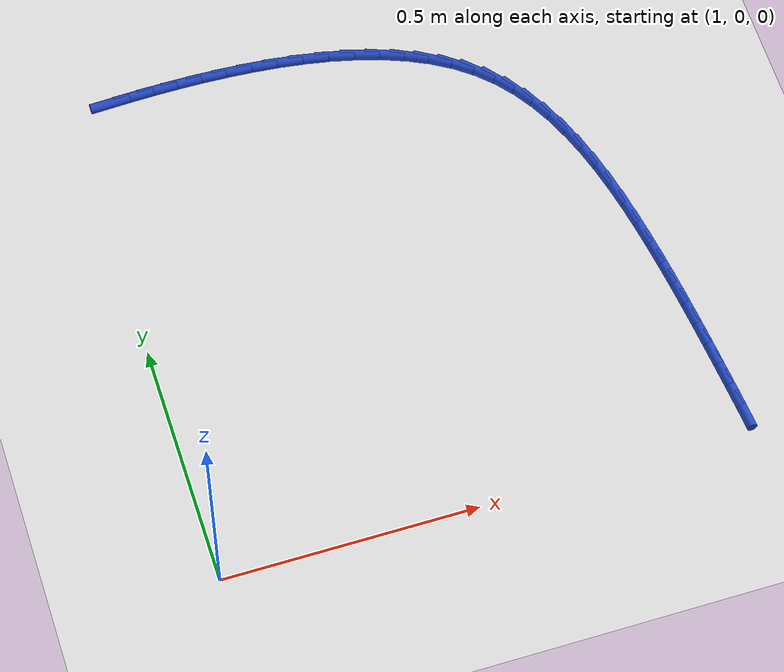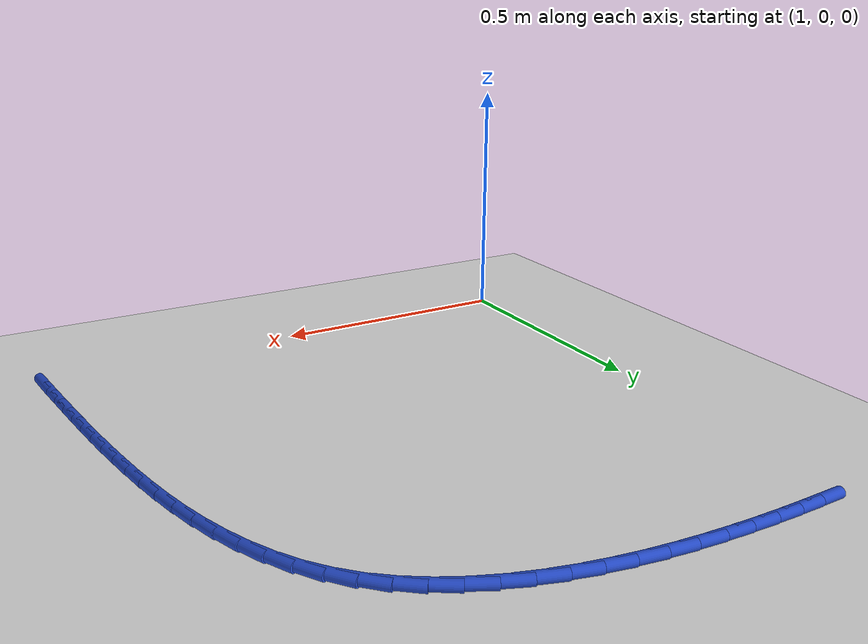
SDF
<sdf version="1.6">
 <world name="default">
  <model name="ground_plane">
   <static>1</static>
   <link name="link">
    <collision name="collision">
     <geometry><plane><normal>0 0 1</normal><size>100 100</size></plane></geometry>
     <surface><friction><ode><mu>100</mu><mu2>50</mu2></ode></friction></surface>
    </collision>
    <visual name="visual">
     <cast_shadows>0</cast_shadows>
     <geometry><plane><normal>0 0 1</normal><size>100 100</size></plane></geometry>
     <material>
      <script><uri>file://media/materials/scripts/gazebo.material</uri><name>Gazebo/WhiteGlow</name></script>
     </material>
    </visual>
   </link>
  </model>
  <model name="line">
   <link name="link_35">
    <pose>1.077330459599841 1.0617475296056025 0.01 0 1.57 0.0446017251811088</pose>
    <collision name="collision">
     <geometry><cylinder><radius>0.01</radius><length>0.08</length></cylinder></geometry>
    </collision>
    <visual name="visual">
     <material>
      <script><name>Gazebo/Blue</name><uri>file://media/materials/scripts/gazebo.material</uri></script>
     </material>
     <geometry><cylinder><radius>0.01</radius><length>0.08</length></cylinder></geometry>
    </visual>
   </link>
   <link name="link_36">
    <pose>1.1256399923575338 1.0639036480310473 0.01 0 1.57 0.026323497929840085</pose>
    <collision name="collision">
     <geometry><cylinder><radius>0.01</radius><length>0.08</length></cylinder></geometry>
    </collision>
    <visual name="visual">
     <material>
      <script><name>Gazebo/Blue</name><uri>file://media/materials/scripts/gazebo.material</uri></script>
     </material>
     <geometry><cylinder><radius>0.01</radius><length>0.08</length></cylinder></geometry>
    </visual>
   </link>
   <link name="link_37">
    <pose>1.1745354990775845 1.0651910461721563 0.01 0 1.57 0.006543846868040155</pose>
    <collision name="collision">
     <geometry><cylinder><radius>0.01</radius><length>0.08</length></cylinder></geometry>
    </collision>
    <visual name="visual">
     <material>
      <script><name>Gazebo/Blue</name><uri>file://media/materials/scripts/gazebo.material</uri></script>
     </material>
     <geometry><cylinder><radius>0.01</radius><length>0.08</length></cylinder></geometry>
    </visual>
   </link>
   <link name="link_38">
    <pose>1.2242155370669672 1.0655161493736862 0.01 0 1.57 -0.014594561211399498</pose>
    <collision name="collision">
     <geometry><cylinder><radius>0.01</radius><length>0.08</length></cylinder></geometry>
    </collision>
    <visual name="visual">
     <material>
      <script><name>Gazebo/Blue</name><uri>file://media/materials/scripts/gazebo.material</uri></script>
     </material>
     <geometry><cylinder><radius>0.01</radius><length>0.08</length></cylinder></geometry>
    </visual>
   </link>
   <link name="link_39">
    <pose>1.2748469841931045 1.0647771531496053 0.01 0 1.57 -0.03883700470863113</pose>
    <collision name="collision">
     <geometry><cylinder><radius>0.01</radius><length>0.08</length></cylinder></geometry>
    </collision>
    <visual name="visual">
     <material>
      <script><name>Gazebo/Blue</name><uri>file://media/materials/scripts/gazebo.material</uri></script>
     </material>
     <geometry><cylinder><radius>0.01</radius><length>0.08</length></cylinder></geometry>
    </visual>
   </link>
   <link name="link_40">
    <pose>1.3262420598524998 1.0627801182020307 0.01 0 1.57 -0.06766321029863363</pose>
    <collision name="collision">
     <geometry><cylinder><radius>0.01</radius><length>0.08</length></cylinder></geometry>
    </collision>
    <visual name="visual">
     <material>
      <script><name>Gazebo/Blue</name><uri>file://media/materials/scripts/gazebo.material</uri></script>
     </material>
     <geometry><cylinder><radius>0.01</radius><length>0.08</length></cylinder></geometry>
    </visual>
   </link>
   <link name="link_41">
    <pose>1.3779904748190344 1.0592733009177675 0.01 0 1.57 -0.10159209715488299</pose>
    <collision name="collision">
     <geometry><cylinder><radius>0.01</radius><length>0.08</length></cylinder></geometry>
    </collision>
    <visual name="visual">
     <material>
      <script><name>Gazebo/Blue</name><uri>file://media/materials/scripts/gazebo.material</uri></script>
     </material>
     <geometry><cylinder><radius>0.01</radius><length>0.08</length></cylinder></geometry>
    </visual>
   </link>
   <link name="link_42">
    <pose>1.4296785045673628 1.0540040652457585 0.01 0 1.57 -0.14128497044938518</pose>
    <collision name="collision">
     <geometry><cylinder><radius>0.01</radius><length>0.08</length></cylinder></geometry>
    </collision>
    <visual name="visual">
     <material>
      <script><name>Gazebo/Blue</name><uri>file://media/materials/scripts/gazebo.material</uri></script>
     </material>
     <geometry><cylinder><radius>0.01</radius><length>0.08</length></cylinder></geometry>
    </visual>
   </link>
   <link name="link_43">
    <pose>1.4808924245721409 1.0467197751349457 0.01 0 1.57 -0.1875706249761669</pose>
    <collision name="collision">
     <geometry><cylinder><radius>0.01</radius><length>0.08</length></cylinder></geometry>
    </collision>
    <visual name="visual">
     <material>
      <script><name>Gazebo/Blue</name><uri>file://media/materials/scripts/gazebo.material</uri></script>
     </material>
     <geometry><cylinder><radius>0.01</radius><length>0.08</length></cylinder></geometry>
    </visual>
   </link>
   <link name="link_44">
    <pose>1.5312185103080245 1.0371677945342719 0.01 0 1.57 -0.24144648340928193</pose>
    <collision name="collision">
     <geometry><cylinder><radius>0.01</radius><length>0.08</length></cylinder></geometry>
    </collision>
    <visual name="visual">
     <material>
      <script><name>Gazebo/Blue</name><uri>file://media/materials/scripts/gazebo.material</uri></script>
     </material>
     <geometry><cylinder><radius>0.01</radius><length>0.08</length></cylinder></geometry>
    </visual>
   </link>
   <link name="link_45">
    <pose>1.580243037249668 1.0250954873926796 0.01 0 1.57 -0.30406163387184343</pose>
    <collision name="collision">
     <geometry><cylinder><radius>0.01</radius><length>0.08</length></cylinder></geometry>
    </collision>
    <visual name="visual">
     <material>
      <script><name>Gazebo/Blue</name><uri>file://media/materials/scripts/gazebo.material</uri></script>
     </material>
     <geometry><cylinder><radius>0.01</radius><length>0.08</length></cylinder></geometry>
    </visual>
   </link>
   <link name="link_46">
    <pose>1.627552280871728 1.0102502176591113 0.01 0 1.57 -0.37666096547751804</pose>
    <collision name="collision">
     <geometry><cylinder><radius>0.01</radius><length>0.08</length></cylinder></geometry>
    </collision>
    <visual name="visual">
     <material>
      <script><name>Gazebo/Blue</name><uri>file://media/materials/scripts/gazebo.material</uri></script>
     </material>
     <geometry><cylinder><radius>0.01</radius><length>0.08</length></cylinder></geometry>
    </visual>
   </link>
   <link name="link_47">
    <pose>1.6727325166488594 0.9923793492825097 0.01 0 1.57 -0.4604594581554081</pose>
    <collision name="collision">
     <geometry><cylinder><radius>0.01</radius><length>0.08</length></cylinder></geometry>
    </collision>
    <visual name="visual">
     <material>
      <script><name>Gazebo/Blue</name><uri>file://media/materials/scripts/gazebo.material</uri></script>
     </material>
     <geometry><cylinder><radius>0.01</radius><length>0.08</length></cylinder></geometry>
    </visual>
   </link>
   <link name="link_48">
    <pose>1.7153700200557183 0.9712302462118169 0.01 0 1.57 -0.5564093542732482</pose>
    <collision name="collision">
     <geometry><cylinder><radius>0.01</radius><length>0.08</length></cylinder></geometry>
    </collision>
    <visual name="visual">
     <material>
      <script><name>Gazebo/Blue</name><uri>file://media/materials/scripts/gazebo.material</uri></script>
     </material>
     <geometry><cylinder><radius>0.01</radius><length>0.08</length></cylinder></geometry>
    </visual>
   </link>
   <link name="link_49">
    <pose>1.7550510665669588 0.9465502723959759 0.01 0 1.57 -0.6648361354555788</pose>
    <collision name="collision">
     <geometry><cylinder><radius>0.01</radius><length>0.08</length></cylinder></geometry>
    </collision>
    <visual name="visual">
     <material>
      <script><name>Gazebo/Blue</name><uri>file://media/materials/scripts/gazebo.material</uri></script>
     </material>
     <geometry><cylinder><radius>0.01</radius><length>0.08</length></cylinder></geometry>
    </visual>
   </link>
   <link name="link_50">
    <pose>1.7913619316572378 0.9180867917839286 0.01 0 1.57 -0.7845811259198384</pose>
    <collision name="collision">
     <geometry><cylinder><radius>0.01</radius><length>0.08</length></cylinder></geometry>
    </collision>
    <visual name="visual">
     <material>
      <script><name>Gazebo/Blue</name><uri>file://media/materials/scripts/gazebo.material</uri></script>
     </material>
     <geometry><cylinder><radius>0.01</radius><length>0.08</length></cylinder></geometry>
    </visual>
   </link>
   <link name="link_51">
    <pose>1.823901554734521 0.8856002974933804 0.01 0 1.57 -0.9031709341815312</pose>
    <collision name="collision">
     <geometry><cylinder><radius>0.01</radius><length>0.08</length></cylinder></geometry>
    </collision>
    <visual name="visual">
     <material>
      <script><name>Gazebo/Blue</name><uri>file://media/materials/scripts/gazebo.material</uri></script>
     </material>
     <geometry><cylinder><radius>0.01</radius><length>0.08</length></cylinder></geometry>
    </visual>
   </link>
   <link name="link_52">
    <pose>1.8526020337529767 0.8491966804477683 0.01 0 1.57 -1.0077063952306282</pose>
    <collision name="collision">
     <geometry><cylinder><radius>0.01</radius><length>0.08</length></cylinder></geometry>
    </collision>
    <visual name="visual">
     <material>
      <script><name>Gazebo/Blue</name><uri>file://media/materials/scripts/gazebo.material</uri></script>
     </material>
     <geometry><cylinder><radius>0.01</radius><length>0.08</length></cylinder></geometry>
    </visual>
   </link>
   <link name="link_53">
    <pose>1.8777537049039736 0.8093532304209262 0.01 0 1.57 -1.097528058521291</pose>
    <collision name="collision">
     <geometry><cylinder><radius>0.01</radius><length>0.08</length></cylinder></geometry>
    </collision>
    <visual name="visual">
     <material>
      <script><name>Gazebo/Blue</name><uri>file://media/materials/scripts/gazebo.material</uri></script>
     </material>
     <geometry><cylinder><radius>0.01</radius><length>0.08</length></cylinder></geometry>
    </visual>
   </link>
   <link name="link_54">
    <pose>1.8996645925349527 0.766565575153295 0.01 0 1.57 -1.1735646982423504</pose>
    <collision name="collision">
     <geometry><cylinder><radius>0.01</radius><length>0.08</length></cylinder></geometry>
    </collision>
    <visual name="visual">
     <material>
      <script><name>Gazebo/Blue</name><uri>file://media/materials/scripts/gazebo.material</uri></script>
     </material>
     <geometry><cylinder><radius>0.01</radius><length>0.08</length></cylinder></geometry>
    </visual>
   </link>
   <link name="link_55">
    <pose>1.9186427209933583 0.7213293423853167 0.01 0 1.57 -1.2371986365955125</pose>
    <collision name="collision">
     <geometry><cylinder><radius>0.01</radius><length>0.08</length></cylinder></geometry>
    </collision>
    <visual name="visual">
     <material>
      <script><name>Gazebo/Blue</name><uri>file://media/materials/scripts/gazebo.material</uri></script>
     </material>
     <geometry><cylinder><radius>0.01</radius><length>0.08</length></cylinder></geometry>
    </visual>
   </link>
   <link name="link_56">
    <pose>1.9349961146266323 0.6741401598574334 0.01 0 1.57 -1.2898819806516661</pose>
    <collision name="collision">
     <geometry><cylinder><radius>0.01</radius><length>0.08</length></cylinder></geometry>
    </collision>
    <visual name="visual">
     <material>
      <script><name>Gazebo/Blue</name><uri>file://media/materials/scripts/gazebo.material</uri></script>
     </material>
     <geometry><cylinder><radius>0.01</radius><length>0.08</length></cylinder></geometry>
    </visual>
   </link>
   <link name="link_57">
    <pose>1.949032797782218 0.6254936553100867 0.01 0 1.57 -1.332926757492975</pose>
    <collision name="collision">
     <geometry><cylinder><radius>0.01</radius><length>0.08</length></cylinder></geometry>
    </collision>
    <visual name="visual">
     <material>
      <script><name>Gazebo/Blue</name><uri>file://media/materials/scripts/gazebo.material</uri></script>
     </material>
     <geometry><cylinder><radius>0.01</radius><length>0.08</length></cylinder></geometry>
    </visual>
   </link>
   <link name="link_58">
    <pose>1.9610607948075578 0.575885456483719 0.01 0 1.57 -1.3674076708182594</pose>
    <collision name="collision">
     <geometry><cylinder><radius>0.01</radius><length>0.08</length></cylinder></geometry>
    </collision>
    <visual name="visual">
     <material>
      <script><name>Gazebo/Blue</name><uri>file://media/materials/scripts/gazebo.material</uri></script>
     </material>
     <geometry><cylinder><radius>0.01</radius><length>0.08</length></cylinder></geometry>
    </visual>
   </link>
   <link name="link_59">
    <pose>1.971388130050095 0.5258111911187717 0.01 0 1.57 -1.3941234215570681</pose>
    <collision name="collision">
     <geometry><cylinder><radius>0.01</radius><length>0.08</length></cylinder></geometry>
    </collision>
    <visual name="visual">
     <material>
      <script><name>Gazebo/Blue</name><uri>file://media/materials/scripts/gazebo.material</uri></script>
     </material>
     <geometry><cylinder><radius>0.01</radius><length>0.08</length></cylinder></geometry>
    </visual>
   </link>
   <link name="link_60">
    <pose>1.9803228278572718 0.47576648695568724 0.01 0 1.57 -1.4136600682739369</pose>
    <collision name="collision">
     <geometry><cylinder><radius>0.01</radius><length>0.08</length></cylinder></geometry>
    </collision>
    <visual name="visual">
     <material>
      <script><name>Gazebo/Blue</name><uri>file://media/materials/scripts/gazebo.material</uri></script>
     </material>
     <geometry><cylinder><radius>0.01</radius><length>0.08</length></cylinder></geometry>
    </visual>
   </link>
   <link name="link_61">
    <pose>1.9881703773529116 0.42623716161352854 0.01 0 1.57 -1.4286281256002147</pose>
    <collision name="collision">
     <geometry><cylinder><radius>0.01</radius><length>0.08</length></cylinder></geometry>
    </collision>
    <visual name="visual">
     <material>
      <script><name>Gazebo/Blue</name><uri>file://media/materials/scripts/gazebo.material</uri></script>
     </material>
     <geometry><cylinder><radius>0.01</radius><length>0.08</length></cylinder></geometry>
    </visual>
   </link>
   <link name="link_62">
    <pose>1.9951591222733742 0.3774105163956057 0.01 0 1.57 -1.4416793062806386</pose>
    <collision name="collision">
     <geometry><cylinder><radius>0.01</radius><length>0.08</length></cylinder></geometry>
    </collision>
    <visual name="visual">
     <material>
      <script><name>Gazebo/Blue</name><uri>file://media/materials/scripts/gazebo.material</uri></script>
     </material>
     <geometry><cylinder><radius>0.01</radius><length>0.08</length></cylinder></geometry>
    </visual>
   </link>
   <link name="link_63">
    <pose>2.001428071097467 0.32912816723336275 0.01 0 1.57 -1.4527402589697305</pose>
    <collision name="collision">
     <geometry><cylinder><radius>0.01</radius><length>0.08</length></cylinder></geometry>
    </collision>
    <visual name="visual">
     <material>
      <script><name>Gazebo/Blue</name><uri>file://media/materials/scripts/gazebo.material</uri></script>
     </material>
     <geometry><cylinder><radius>0.01</radius><length>0.08</length></cylinder></geometry>
    </visual>
   </link>
   <link name="link_64">
    <pose>2.0071112426461846 0.2812124224325322 0.01 0 1.57 -1.4616206004657732</pose>
    <collision name="collision">
     <geometry><cylinder><radius>0.01</radius><length>0.08</length></cylinder></geometry>
    </collision>
    <visual name="visual">
     <material>
      <script><name>Gazebo/Blue</name><uri>file://media/materials/scripts/gazebo.material</uri></script>
     </material>
     <geometry><cylinder><radius>0.01</radius><length>0.08</length></cylinder></geometry>
    </visual>
   </link>
   <link name="link_65">
    <pose>2.012342655740523 0.2334855902988454 0.01 0 1.57 -1.4681797207583678</pose>
    <collision name="collision">
     <geometry><cylinder><radius>0.01</radius><length>0.08</length></cylinder></geometry>
    </collision>
    <visual name="visual">
     <material>
      <script><name>Gazebo/Blue</name><uri>file://media/materials/scripts/gazebo.material</uri></script>
     </material>
     <geometry><cylinder><radius>0.01</radius><length>0.08</length></cylinder></geometry>
    </visual>
   </link>
   <link name="link_66">
    <pose>2.017256329201478 0.18576997913803384 0.01 0 1.57 -1.4723324187671432</pose>
    <collision name="collision">
     <geometry><cylinder><radius>0.01</radius><length>0.08</length></cylinder></geometry>
    </collision>
    <visual name="visual">
     <material>
      <script><name>Gazebo/Blue</name><uri>file://media/materials/scripts/gazebo.material</uri></script>
     </material>
     <geometry><cylinder><radius>0.01</radius><length>0.08</length></cylinder></geometry>
    </visual>
   </link>
   <link name="link_67">
    <pose>2.0219862818500434 0.1378878972558299 0.01 0 1.57 -1.4745955139588494</pose>
    <collision name="collision">
     <geometry><cylinder><radius>0.01</radius><length>0.08</length></cylinder></geometry>
    </collision>
    <visual name="visual">
     <material>
      <script><name>Gazebo/Blue</name><uri>file://media/materials/scripts/gazebo.material</uri></script>
     </material>
     <geometry><cylinder><radius>0.01</radius><length>0.08</length></cylinder></geometry>
    </visual>
   </link>
   <link name="link_68">
    <pose>2.026637991394799 0.08968299494147082 0.01 0 1.57 -1.4790407924561708</pose>
    <collision name="collision">
     <geometry><cylinder><radius>0.01</radius><length>0.08</length></cylinder></geometry>
    </collision>
    <visual name="visual">
     <material>
      <script><name>Gazebo/Blue</name><uri>file://media/materials/scripts/gazebo.material</uri></script>
     </material>
     <geometry><cylinder><radius>0.01</radius><length>0.08</length></cylinder></geometry>
    </visual>
   </link>
   <link name="link_69">
    <pose>2.031102874562708 0.041158989333452 0.01 0 1.57 -1.487484022941152</pose>
    <collision name="collision">
     <geometry><cylinder><radius>0.01</radius><length>0.08</length></cylinder></geometry>
    </collision>
    <visual name="visual">
     <material>
      <script><name>Gazebo/Blue</name><uri>file://media/materials/scripts/gazebo.material</uri></script>
     </material>
     <geometry><cylinder><radius>0.01</radius><length>0.08</length></cylinder></geometry>
    </visual>
   </link>
  </model>
 </world>
</sdf>
